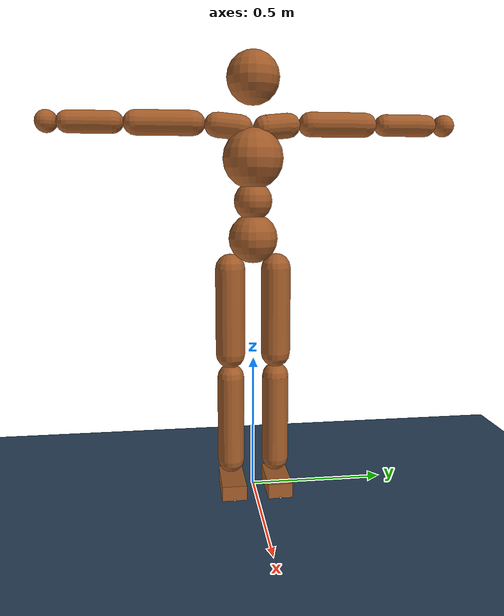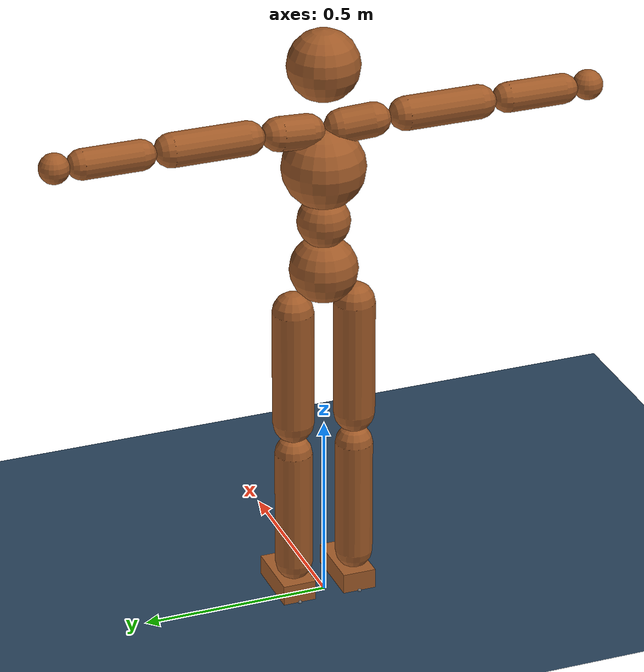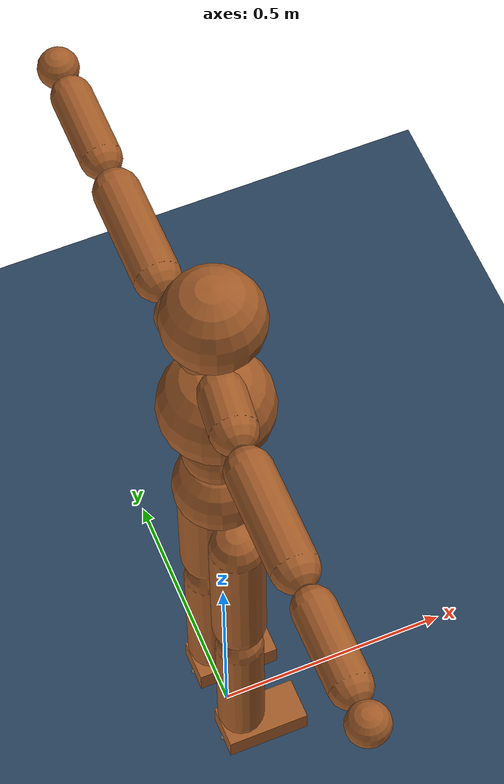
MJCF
<mujoco model="humanoid">
  <statistic extent="2" center="0 0 1"/>

  <default>
    <motor ctrlrange="-1 1" ctrllimited="true"/>
    <default class="body">
      <geom type="capsule" condim="1" friction=".7" solimp=".9 .99 .003" solref=".015 1" material="body" group="1"/>
      <joint limited="true" solimplimit="0 .99 .01"/>
    </default>
  </default>

  <visual>
    <map force="0.1" zfar="30"/>
    <rgba haze="0.15 0.25 0.35 1"/>
    <global offwidth="2560" offheight="1440" elevation="-20" azimuth="120"/>
  </visual>

  <asset>
    <texture type="skybox" builtin="gradient" rgb1=".3 .5 .7" rgb2="0 0 0" width="32" height="512"/>
    <texture name="body" type="cube" builtin="flat" mark="cross" width="128" height="128" rgb1="0.8 0.6 0.4" rgb2="0.8 0.6 0.4" markrgb="1 1 1"/>
    <material name="body" texture="body" texuniform="true" rgba="0.8 0.6 .4 1"/>
    <texture name="grid" type="2d" builtin="checker" width="512" height="512" rgb1=".1 .2 .3" rgb2=".2 .3 .4"/>
    <material name="grid" texture="grid" texrepeat="1 1" texuniform="true" reflectance=".2"/>
  </asset>

  <worldbody>
    <light name="spotlight" mode="targetbodycom" target="pelvis" diffuse=".8 .8 .8" specular="0.3 0.3 0.3" pos="0 -6 4" cutoff="30"/>
    <light name="top" pos="0 0 2" mode="trackcom"/>
    <geom name="floor" pos="0 0 0" size="0 0 .25" type="plane" material="grid" condim="3"/>

	  <body name="pelvis" pos="0 0 0.880749" childclass="body">
      <freejoint name="root"/>
      <geom name="pelvis" type="sphere" pos="0 0 0.07" size=".09" density="2226"/>
      <geom name="upper_waist" type="sphere" pos="0 0 0.205" size="0.07" density="2226"/>

      <body name="torso" pos="0 0 0.236151">
        <camera name="back" pos="-3 0 1" xyaxes="0 -1 0 1 0 2" mode="trackcom"/>
        <camera name="side" pos="0 -2.5 1" xyaxes="1 0 0 0 1 2" mode="trackcom"/>
        <joint name="abdomen_x" type="hinge" axis="1 0 0" range="-60 60" stiffness="1000" damping="100" armature=".02"/>
        <joint name="abdomen_y" type="hinge" axis="0 1 0" range="-60 90" stiffness="1000" damping="100" armature=".02"/>
        <joint name="abdomen_z" type="hinge" axis="0 0 1" range="-70 70" stiffness="1000" damping="100" armature=".02"/>
        <geom name="torso" type="sphere" pos="0 0 0.12" size="0.11" density="1794"/>

        <geom name="right_clavicle" type="capsule" fromto="-0.0060125 -0.0457775 0.2287955 -0.016835 -0.128177 0.2376182" size=".045" density="1100"/>
        <geom name="left_clavicle" type="capsule" fromto="-0.0060125 0.0457775 0.2287955 -0.016835 0.128177 0.2376182" size=".045" density="1100"/>

        <body name="head" pos="0 0 0.223894">
          <joint name="neck_x" type="hinge" axis="1 0 0" range="-50 50" stiffness="100" damping="10" armature=".01"/>
          <joint name="neck_y" type="hinge" axis="0 1 0" range="-40 60" stiffness="100" damping="10" armature=".01"/>
          <joint name="neck_z" type="hinge" axis="0 0 1" range="-45 45" stiffness="100" damping="10" armature=".01"/>
          <geom name="head" type="sphere" pos="0 0 0.175" size="0.095" density="1081"/>
          <camera name="egocentric" pos=".09 0 0" xyaxes="0 -1 0 .1 0 1" fovy="80"/>
        </body>

        <body name="right_upper_arm" pos="-0.02405 -0.18311 0.24350">
          <joint name="right_shoulder_x" type="hinge" axis="1 0 0" range="-110 140" stiffness="400" damping="40" armature=".02"/>
          <joint name="right_shoulder_y" type="hinge" axis="0 1 0" range="-90 90" stiffness="400" damping="40" armature=".02"/>
          <joint name="right_shoulder_z" type="hinge" axis="0 0 1"  range="-60 160" stiffness="400" damping="40" armature=".02"/>
          <geom name="right_upper_arm" type="capsule" fromto="0 -0.03 0 0 -0.23 0" size=".045" density="982"/>

          <body name="right_lower_arm" pos="0 -0.274788 0">
            <joint name="right_elbow" type="hinge" axis="0 0 1" range="0 160" stiffness="300" damping="30" armature=".01"/>
            <geom name="right_lower_arm" type="capsule" fromto="0 -0.035 0 0 -0.1875 0" size="0.04" density="1056"/>

            <body name="right_hand" pos="0 -0.258947 0">
              <geom name="right_hand" type="sphere" size=".04" density="1865"/>
            </body>
          </body>
        </body>

        <body name="left_upper_arm" pos="-0.02405 0.18311 0.24350">
          <joint name="left_shoulder_x" type="hinge" axis="1 0 0" range="-140 110" stiffness="400" damping="40" armature=".02"/>
          <joint name="left_shoulder_y" type="hinge" axis="0 1 0" range="-90 90" stiffness="400" damping="40" armature=".02"/>
          <joint name="left_shoulder_z" type="hinge" axis="0 0 1"  range="-160 60" stiffness="400" damping="40" armature=".02"/>
          <geom name="left_upper_arm" type="capsule" fromto="0 0.03 0 0 0.23 0" size="0.045" density="982"/>

          <body name="left_lower_arm" pos="0 0.274788 0">
            <joint name="left_elbow" type="hinge" axis="0 0 1" range="-160 0" stiffness="300" damping="30" armature=".01"/>
            <geom name="left_lower_arm" type="capsule" fromto="0 0.035 0 0 0.1875 0" size="0.04" density="1056"/>

            <body name="left_hand" pos="0 0.258947 0">
              <geom name="left_hand" type="sphere" size=".04" density="1865"/>
            </body>
          </body>
        </body>
      </body>

      <body name="right_thigh" pos="0 -0.084887 0">
        <joint name="right_hip_x" type="hinge" axis="1 0 0" range="-60 30" stiffness="500" damping="50" armature=".02"/>
        <joint name="right_hip_y" type="hinge" axis="0 1 0" range="-140 60" stiffness="500" damping="50" armature=".02"/>
        <joint name="right_hip_z" type="hinge" axis="0 0 1" range="-60 60" stiffness="500" damping="50" armature=".02"/>
        <geom name="right_thigh" type="capsule" fromto="0 0 -0.04 0 0 -0.36" size="0.055" density="1269"/>

        <body name="right_shin" pos="0 0 -0.421546">
          <joint name="right_knee" type="hinge" axis="0 1 0" range="0 160" stiffness="500" damping="50" armature=".02"/>
          <geom name="right_shin" type="capsule" fromto="0 0 -0.03 0 0 -0.355"  size=".05" density="1014"/>

          <body name="right_foot" pos="0 0 -0.409870">
            <joint name="right_ankle_x" type="hinge" axis="1 0 0" range="-30 30" stiffness="400" damping="40" armature=".01"/>
            <joint name="right_ankle_y" type="hinge" axis="0 1 0" range="-55 55" stiffness="400" damping="40" armature=".01"/>
            <joint name="right_ankle_z" type="hinge" axis="0 0 1" range="-40 40" stiffness="400" damping="40" armature=".01"/>
            <geom name="right_foot" type="box" pos="0.045 0 -0.0225" size="0.0885 0.045 0.0275" density="1141"/>
            <site name="right_heel_site" pos="-0.0435 0 -0.05" size="0.005"/>
            <site name="right_toe_site"  pos="0.1335  0 -0.05" size="0.005"/>
          </body>
        </body>
      </body>

      <body name="left_thigh" pos="0 0.084887 0">
        <joint name="left_hip_x" type="hinge" axis="1 0 0" range="-30 60" stiffness="500" damping="50" armature=".02"/>
        <joint name="left_hip_y" type="hinge" axis="0 1 0" range="-140 60" stiffness="500" damping="50" armature=".02"/>
        <joint name="left_hip_z" type="hinge" axis="0 0 1" range="-60 60" stiffness="500" damping="50" armature=".02"/>
        <geom name="left_thigh" type="capsule" fromto="0 0 -0.04 0 0 -0.36" size=".055" density="1269"/>

        <body name="left_shin" pos="0 0 -0.421546">
          <joint name="left_knee" type="hinge" axis="0 1 0" range="0 160" stiffness="500" damping="50" armature=".02"/>
          <geom name="left_shin" type="capsule" fromto="0 0 -0.03 0 0 -0.355"  size=".05" density="1014"/>

          <body name="left_foot" pos="0 0 -0.409870">
            <joint name="left_ankle_x" type="hinge" axis="1 0 0" range="-30 30" stiffness="400" damping="40" armature=".01"/>
            <joint name="left_ankle_y" type="hinge" axis="0 1 0" range="-55 55" stiffness="400" damping="40" armature=".01"/>
            <joint name="left_ankle_z" type="hinge" axis="0 0 1" range="-40 40" stiffness="400" damping="40" armature=".01"/>
            <geom name="left_foot" type="box" pos="0.045 0 -0.0225" size="0.0885 0.045 0.0275" density="1141"/>
            <site name="left_heel_site" pos="-0.0435 0 -0.05" size="0.005"/>
            <site name="left_toe_site"  pos="0.1335  0 -0.05" size="0.005"/>
          </body>
        </body>
      </body>
    </body>
  </worldbody>

  <actuator>
    <motor name='abdomen_x'       	gear='200' 	joint='abdomen_x'/>
    <motor name='abdomen_y'       	gear='200' 	joint='abdomen_y'/>
    <motor name='abdomen_z'       	gear='200' 	joint='abdomen_z'/>
    <motor name='neck_x'          	gear='50' 	joint='neck_x'/>
    <motor name='neck_y'            gear='50' 	joint='neck_y'/>
    <motor name='neck_z'           	gear='50' 	joint='neck_z'/>
    <motor name='right_shoulder_x' 	gear='100' 	joint='right_shoulder_x'/>
    <motor name='right_shoulder_y' 	gear='100' 	joint='right_shoulder_y'/>
    <motor name='right_shoulder_z' 	gear='100' 	joint='right_shoulder_z'/>
    <motor name='right_elbow'     	gear='70' 	joint='right_elbow'/>
    <motor name='left_shoulder_x' 	gear='100' 	joint='left_shoulder_x'/>
    <motor name='left_shoulder_y' 	gear='100' 	joint='left_shoulder_y'/>
    <motor name='left_shoulder_z' 	gear='100' 	joint='left_shoulder_z'/>
    <motor name='left_elbow'      	gear='70' 	joint='left_elbow'/>
    <motor name='right_hip_x'     	gear='200' 	joint='right_hip_x'/>
    <motor name='right_hip_z'     	gear='200' 	joint='right_hip_z'/>
    <motor name='right_hip_y'     	gear='200' 	joint='right_hip_y'/>
    <motor name='right_knee'      	gear='150' 	joint='right_knee'/>
    <motor name='right_ankle_x'   	gear='90' 	joint='right_ankle_x'/>
    <motor name='right_ankle_y'   	gear='90' 	joint='right_ankle_y'/>
    <motor name='right_ankle_z'   	gear='90' 	joint='right_ankle_z'/>
    <motor name='left_hip_x'      	gear='200' 	joint='left_hip_x'/>
    <motor name='left_hip_z'      	gear='200' 	joint='left_hip_z'/>
    <motor name='left_hip_y'      	gear='200' 	joint='left_hip_y'/>
    <motor name='left_knee'       	gear='150' 	joint='left_knee'/>
    <motor name='left_ankle_x'    	gear='90' 	joint='left_ankle_x'/>
    <motor name='left_ankle_y'    	gear='90' 	joint='left_ankle_y'/>
    <motor name='left_ankle_z'    	gear='90' 	joint='left_ankle_z'/>
  </actuator>

  <keyframe>
    <key name="arms"
        qpos="0 0 0.880749 1 0 0 0
              0 0 0
              0 0 0
              1.55281651 -0.310888141 -0.080201156 0.240463093
              -1.55281651  0.310888141  0.080201156 -0.240463093
              0 0 0 0
              0 0 0 0
              0 0 0
              0 0 0"/>
  </keyframe>
</mujoco>
